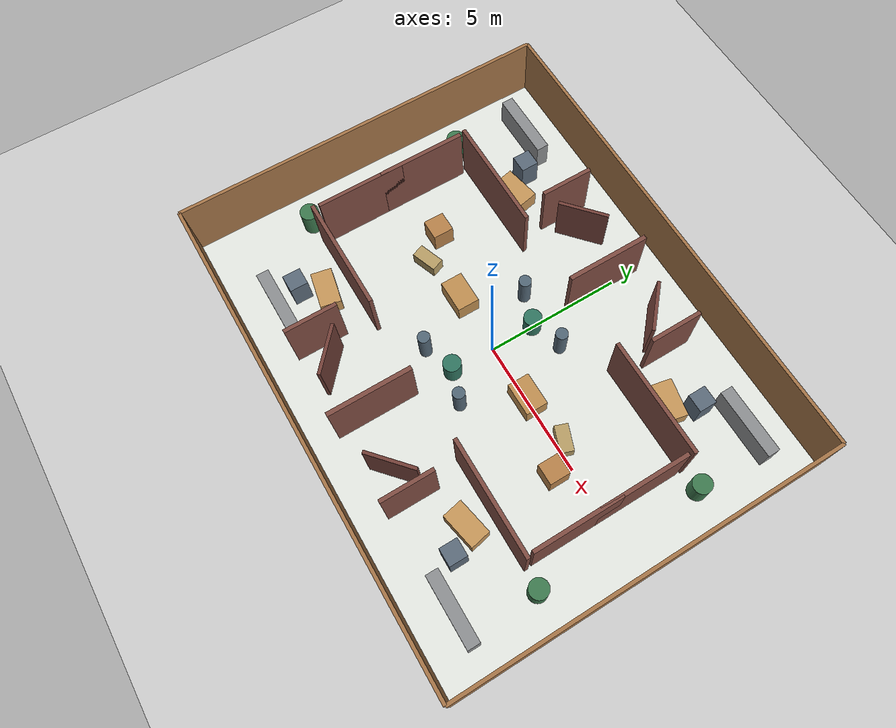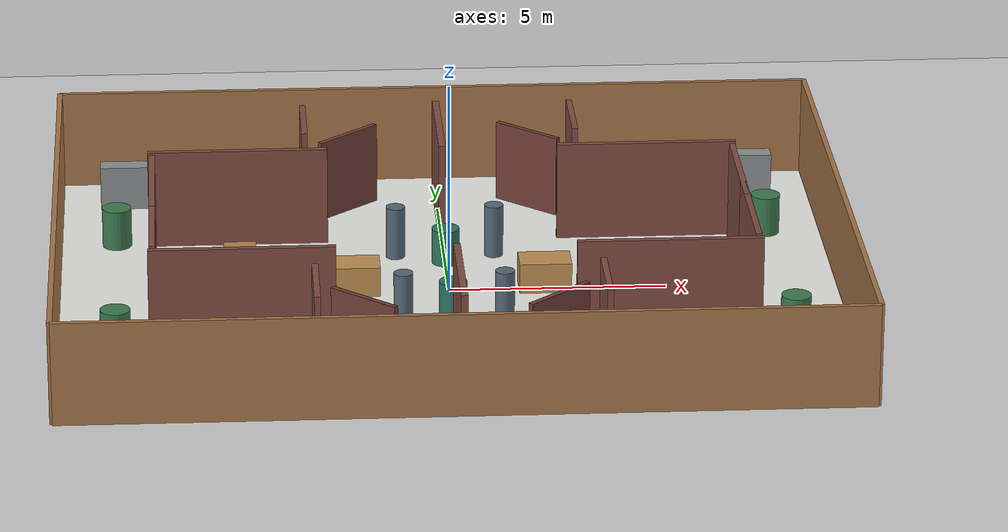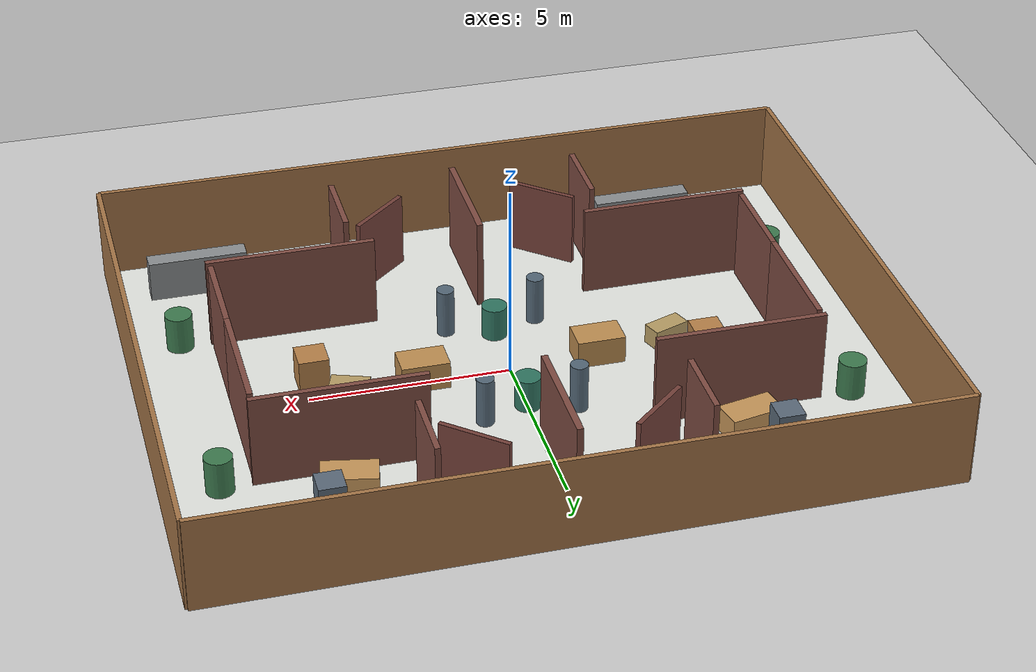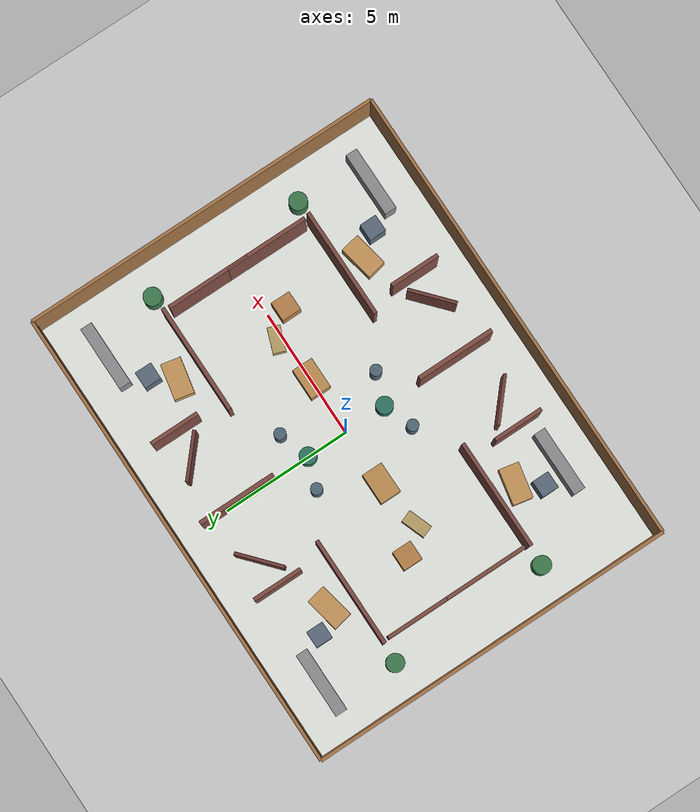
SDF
<?xml version="1.0" ?>
<sdf version="1.6">
  <world name="mapcomplex_scan_world">
    <gravity>0 0 -9.8</gravity>
    <magnetic_field>6e-06 2.3e-05 -4.2e-05</magnetic_field>
    <atmosphere type="adiabatic"/>

    <include>
      <uri>model://sun</uri>
    </include>

    <include>
      <uri>model://ground_plane</uri>
    </include>

    <scene>
      <ambient>0.76 0.76 0.74 1</ambient>
      <background>0.92 0.94 0.97 1</background>
      <shadows>true</shadows>
    </scene>

    <physics name="default_physics" default="1" type="ode">
      <max_step_size>0.001</max_step_size>
      <real_time_update_rate>1000</real_time_update_rate>
    </physics>

    <gui fullscreen="0">
      <camera name="user_camera">
        <pose>0 0 24 0 1.57 1.57</pose>
        <view_controller>orbit</view_controller>
        <projection_type>perspective</projection_type>
      </camera>
    </gui>

    <model name="complex_scan_layout">
      <static>true</static>
      <pose>0 0 0 0 0 0</pose>

      <link name="floor">
        <pose>0 0 0.025 0 0 0</pose>
        <collision name="floor_collision">
          <geometry>
            <box><size>18 14 0.05</size></box>
          </geometry>
        </collision>
        <visual name="floor_visual">
          <geometry>
            <box><size>18 14 0.05</size></box>
          </geometry>
          <material>
            <ambient>0.84 0.85 0.83 1</ambient>
            <diffuse>0.90 0.91 0.89 1</diffuse>
          </material>
        </visual>
      </link>

      <link name="wall_south">
        <pose>0 -7 1.2 0 0 0</pose>
        <collision name="collision">
          <geometry><box><size>18 0.12 2.4</size></box></geometry>
        </collision>
        <visual name="visual">
          <geometry><box><size>18 0.12 2.4</size></box></geometry>
          <material>
            <ambient>0.54 0.37 0.22 1</ambient>
            <diffuse>0.65 0.46 0.28 1</diffuse>
          </material>
        </visual>
      </link>

      <link name="wall_north">
        <pose>0 7 1.2 0 0 0</pose>
        <collision name="collision">
          <geometry><box><size>18 0.12 2.4</size></box></geometry>
        </collision>
        <visual name="visual">
          <geometry><box><size>18 0.12 2.4</size></box></geometry>
          <material>
            <ambient>0.54 0.37 0.22 1</ambient>
            <diffuse>0.65 0.46 0.28 1</diffuse>
          </material>
        </visual>
      </link>

      <link name="wall_west">
        <pose>-9 0 1.2 0 0 0</pose>
        <collision name="collision">
          <geometry><box><size>0.12 14 2.4</size></box></geometry>
        </collision>
        <visual name="visual">
          <geometry><box><size>0.12 14 2.4</size></box></geometry>
          <material>
            <ambient>0.54 0.37 0.22 1</ambient>
            <diffuse>0.65 0.46 0.28 1</diffuse>
          </material>
        </visual>
      </link>

      <link name="wall_east">
        <pose>9 0 1.2 0 0 0</pose>
        <collision name="collision">
          <geometry><box><size>0.12 14 2.4</size></box></geometry>
        </collision>
        <visual name="visual">
          <geometry><box><size>0.12 14 2.4</size></box></geometry>
          <material>
            <ambient>0.54 0.37 0.22 1</ambient>
            <diffuse>0.65 0.46 0.28 1</diffuse>
          </material>
        </visual>
      </link>

      <link name="center_spine_bottom">
        <pose>0 -4.5 1.2 0 0 0</pose>
        <collision name="collision">
          <geometry><box><size>0.16 3.0 2.4</size></box></geometry>
        </collision>
        <visual name="visual">
          <geometry><box><size>0.16 3.0 2.4</size></box></geometry>
          <material>
            <ambient>0.39 0.22 0.20 1</ambient>
            <diffuse>0.50 0.30 0.26 1</diffuse>
          </material>
        </visual>
      </link>

      <link name="center_spine_top">
        <pose>0 4.5 1.2 0 0 0</pose>
        <collision name="collision">
          <geometry><box><size>0.16 3.0 2.4</size></box></geometry>
        </collision>
        <visual name="visual">
          <geometry><box><size>0.16 3.0 2.4</size></box></geometry>
          <material>
            <ambient>0.39 0.22 0.20 1</ambient>
            <diffuse>0.50 0.30 0.26 1</diffuse>
          </material>
        </visual>
      </link>

      <link name="crossbar_south_left">
        <pose>-4.8 -3.0 1.2 0 0 0</pose>
        <collision name="collision">
          <geometry><box><size>4.2 0.14 2.4</size></box></geometry>
        </collision>
        <visual name="visual">
          <geometry><box><size>4.2 0.14 2.4</size></box></geometry>
          <material>
            <ambient>0.39 0.22 0.20 1</ambient>
            <diffuse>0.50 0.30 0.26 1</diffuse>
          </material>
        </visual>
      </link>

      <link name="crossbar_south_right">
        <pose>4.8 -3.0 1.2 0 0 0</pose>
        <collision name="collision">
          <geometry><box><size>4.2 0.14 2.4</size></box></geometry>
        </collision>
        <visual name="visual">
          <geometry><box><size>4.2 0.14 2.4</size></box></geometry>
          <material>
            <ambient>0.39 0.22 0.20 1</ambient>
            <diffuse>0.50 0.30 0.26 1</diffuse>
          </material>
        </visual>
      </link>

      <link name="crossbar_north_left">
        <pose>-4.8 3.0 1.2 0 0 0</pose>
        <collision name="collision">
          <geometry><box><size>4.2 0.14 2.4</size></box></geometry>
        </collision>
        <visual name="visual">
          <geometry><box><size>4.2 0.14 2.4</size></box></geometry>
          <material>
            <ambient>0.39 0.22 0.20 1</ambient>
            <diffuse>0.50 0.30 0.26 1</diffuse>
          </material>
        </visual>
      </link>

      <link name="crossbar_north_right">
        <pose>4.8 3.0 1.2 0 0 0</pose>
        <collision name="collision">
          <geometry><box><size>4.2 0.14 2.4</size></box></geometry>
        </collision>
        <visual name="visual">
          <geometry><box><size>4.2 0.14 2.4</size></box></geometry>
          <material>
            <ambient>0.39 0.22 0.20 1</ambient>
            <diffuse>0.50 0.30 0.26 1</diffuse>
          </material>
        </visual>
      </link>

      <link name="west_vertical_inner_south">
        <pose>-3.2 -4.95 1.2 0 0 0</pose>
        <collision name="collision">
          <geometry><box><size>0.14 1.9 2.4</size></box></geometry>
        </collision>
        <visual name="visual">
          <geometry><box><size>0.14 1.9 2.4</size></box></geometry>
          <material>
            <ambient>0.39 0.22 0.20 1</ambient>
            <diffuse>0.50 0.30 0.26 1</diffuse>
          </material>
        </visual>
      </link>

      <link name="east_vertical_inner_south">
        <pose>3.2 -4.95 1.2 0 0 0</pose>
        <collision name="collision">
          <geometry><box><size>0.14 1.9 2.4</size></box></geometry>
        </collision>
        <visual name="visual">
          <geometry><box><size>0.14 1.9 2.4</size></box></geometry>
          <material>
            <ambient>0.39 0.22 0.20 1</ambient>
            <diffuse>0.50 0.30 0.26 1</diffuse>
          </material>
        </visual>
      </link>

      <link name="west_vertical_inner_north">
        <pose>-3.2 4.95 1.2 0 0 0</pose>
        <collision name="collision">
          <geometry><box><size>0.14 1.9 2.4</size></box></geometry>
        </collision>
        <visual name="visual">
          <geometry><box><size>0.14 1.9 2.4</size></box></geometry>
          <material>
            <ambient>0.39 0.22 0.20 1</ambient>
            <diffuse>0.50 0.30 0.26 1</diffuse>
          </material>
        </visual>
      </link>

      <link name="east_vertical_inner_north">
        <pose>3.2 4.95 1.2 0 0 0</pose>
        <collision name="collision">
          <geometry><box><size>0.14 1.9 2.4</size></box></geometry>
        </collision>
        <visual name="visual">
          <geometry><box><size>0.14 1.9 2.4</size></box></geometry>
          <material>
            <ambient>0.39 0.22 0.20 1</ambient>
            <diffuse>0.50 0.30 0.26 1</diffuse>
          </material>
        </visual>
      </link>

      <link name="west_outer_partition_south">
        <pose>-6.8 -1.2 1.2 0 0 0</pose>
        <collision name="collision">
          <geometry><box><size>0.14 3.2 2.4</size></box></geometry>
        </collision>
        <visual name="visual">
          <geometry><box><size>0.14 3.2 2.4</size></box></geometry>
          <material>
            <ambient>0.39 0.22 0.20 1</ambient>
            <diffuse>0.50 0.30 0.26 1</diffuse>
          </material>
        </visual>
      </link>

      <link name="east_outer_partition_south">
        <pose>6.8 -1.2 1.2 0 0 0</pose>
        <collision name="collision">
          <geometry><box><size>0.14 3.2 2.4</size></box></geometry>
        </collision>
        <visual name="visual">
          <geometry><box><size>0.14 3.2 2.4</size></box></geometry>
          <material>
            <ambient>0.39 0.22 0.20 1</ambient>
            <diffuse>0.50 0.30 0.26 1</diffuse>
          </material>
        </visual>
      </link>

      <link name="west_outer_partition_north">
        <pose>-6.8 1.2 1.2 0 0 0</pose>
        <collision name="collision">
          <geometry><box><size>0.14 3.2 2.4</size></box></geometry>
        </collision>
        <visual name="visual">
          <geometry><box><size>0.14 3.2 2.4</size></box></geometry>
          <material>
            <ambient>0.39 0.22 0.20 1</ambient>
            <diffuse>0.50 0.30 0.26 1</diffuse>
          </material>
        </visual>
      </link>

      <link name="east_outer_partition_north">
        <pose>6.8 1.2 1.2 0 0 0</pose>
        <collision name="collision">
          <geometry><box><size>0.14 3.2 2.4</size></box></geometry>
        </collision>
        <visual name="visual">
          <geometry><box><size>0.14 3.2 2.4</size></box></geometry>
          <material>
            <ambient>0.39 0.22 0.20 1</ambient>
            <diffuse>0.50 0.30 0.26 1</diffuse>
          </material>
        </visual>
      </link>

      <link name="pillar_nw">
        <pose>-5.4 4.7 0.55 0 0 0</pose>
        <collision name="collision">
          <geometry><box><size>0.65 0.65 1.1</size></box></geometry>
        </collision>
        <visual name="visual">
          <geometry><box><size>0.65 0.65 1.1</size></box></geometry>
          <material>
            <ambient>0.28 0.33 0.38 1</ambient>
            <diffuse>0.36 0.42 0.48 1</diffuse>
          </material>
        </visual>
      </link>

      <link name="pillar_ne">
        <pose>5.4 4.7 0.55 0 0 0</pose>
        <collision name="collision">
          <geometry><box><size>0.65 0.65 1.1</size></box></geometry>
        </collision>
        <visual name="visual">
          <geometry><box><size>0.65 0.65 1.1</size></box></geometry>
          <material>
            <ambient>0.28 0.33 0.38 1</ambient>
            <diffuse>0.36 0.42 0.48 1</diffuse>
          </material>
        </visual>
      </link>

      <link name="pillar_sw">
        <pose>-5.4 -4.7 0.55 0 0 0</pose>
        <collision name="collision">
          <geometry><box><size>0.65 0.65 1.1</size></box></geometry>
        </collision>
        <visual name="visual">
          <geometry><box><size>0.65 0.65 1.1</size></box></geometry>
          <material>
            <ambient>0.28 0.33 0.38 1</ambient>
            <diffuse>0.36 0.42 0.48 1</diffuse>
          </material>
        </visual>
      </link>

      <link name="pillar_se">
        <pose>5.4 -4.7 0.55 0 0 0</pose>
        <collision name="collision">
          <geometry><box><size>0.65 0.65 1.1</size></box></geometry>
        </collision>
        <visual name="visual">
          <geometry><box><size>0.65 0.65 1.1</size></box></geometry>
          <material>
            <ambient>0.28 0.33 0.38 1</ambient>
            <diffuse>0.36 0.42 0.48 1</diffuse>
          </material>
        </visual>
      </link>

      <link name="low_box_west_mid">
        <pose>-2.2 0 0.38 0 0 0</pose>
        <collision name="collision">
          <geometry><box><size>1.2 0.8 0.76</size></box></geometry>
        </collision>
        <visual name="visual">
          <geometry><box><size>1.2 0.8 0.76</size></box></geometry>
          <material>
            <ambient>0.63 0.47 0.27 1</ambient>
            <diffuse>0.75 0.56 0.32 1</diffuse>
          </material>
        </visual>
      </link>

      <link name="low_box_east_mid">
        <pose>2.2 0 0.38 0 0 0</pose>
        <collision name="collision">
          <geometry><box><size>1.2 0.8 0.76</size></box></geometry>
        </collision>
        <visual name="visual">
          <geometry><box><size>1.2 0.8 0.76</size></box></geometry>
          <material>
            <ambient>0.63 0.47 0.27 1</ambient>
            <diffuse>0.75 0.56 0.32 1</diffuse>
          </material>
        </visual>
      </link>

      <link name="cylinder_south_center">
        <pose>0 -1.6 0.45 0 0 0</pose>
        <collision name="collision">
          <geometry><cylinder><radius>0.32</radius><length>0.9</length></cylinder></geometry>
        </collision>
        <visual name="visual">
          <geometry><cylinder><radius>0.32</radius><length>0.9</length></cylinder></geometry>
          <material>
            <ambient>0.15 0.34 0.28 1</ambient>
            <diffuse>0.19 0.46 0.38 1</diffuse>
          </material>
        </visual>
      </link>

      <link name="cylinder_north_center">
        <pose>0 1.6 0.45 0 0 0</pose>
        <collision name="collision">
          <geometry><cylinder><radius>0.32</radius><length>0.9</length></cylinder></geometry>
        </collision>
        <visual name="visual">
          <geometry><cylinder><radius>0.32</radius><length>0.9</length></cylinder></geometry>
          <material>
            <ambient>0.15 0.34 0.28 1</ambient>
            <diffuse>0.19 0.46 0.38 1</diffuse>
          </material>
        </visual>
      </link>

      <link name="nw_shelf_long">
        <pose>-6.8 5.55 0.55 0 0 0</pose>
        <collision name="collision">
          <geometry><box><size>2.5 0.45 1.1</size></box></geometry>
        </collision>
        <visual name="visual">
          <geometry><box><size>2.5 0.45 1.1</size></box></geometry>
          <material>
            <ambient>0.42 0.43 0.43 1</ambient>
            <diffuse>0.55 0.56 0.57 1</diffuse>
          </material>
        </visual>
      </link>

      <link name="ne_shelf_long">
        <pose>6.8 5.55 0.55 0 0 0</pose>
        <collision name="collision">
          <geometry><box><size>2.5 0.45 1.1</size></box></geometry>
        </collision>
        <visual name="visual">
          <geometry><box><size>2.5 0.45 1.1</size></box></geometry>
          <material>
            <ambient>0.42 0.43 0.43 1</ambient>
            <diffuse>0.55 0.56 0.57 1</diffuse>
          </material>
        </visual>
      </link>

      <link name="sw_shelf_long">
        <pose>-5.0 -5.55 0.55 0 0 0</pose>
        <collision name="collision">
          <geometry><box><size>2.5 0.45 1.1</size></box></geometry>
        </collision>
        <visual name="visual">
          <geometry><box><size>2.5 0.45 1.1</size></box></geometry>
          <material>
            <ambient>0.42 0.43 0.43 1</ambient>
            <diffuse>0.55 0.56 0.57 1</diffuse>
          </material>
        </visual>
      </link>

      <link name="se_shelf_long">
        <pose>6.8 -5.55 0.55 0 0 0</pose>
        <collision name="collision">
          <geometry><box><size>2.5 0.45 1.1</size></box></geometry>
        </collision>
        <visual name="visual">
          <geometry><box><size>2.5 0.45 1.1</size></box></geometry>
          <material>
            <ambient>0.42 0.43 0.43 1</ambient>
            <diffuse>0.55 0.56 0.57 1</diffuse>
          </material>
        </visual>
      </link>

      <link name="nw_diagonal_screen">
        <pose>-2.15 5.0 1.0 0 0 0.72</pose>
        <collision name="collision">
          <geometry><box><size>1.8 0.12 2.0</size></box></geometry>
        </collision>
        <visual name="visual">
          <geometry><box><size>1.8 0.12 2.0</size></box></geometry>
          <material>
            <ambient>0.34 0.18 0.17 1</ambient>
            <diffuse>0.45 0.25 0.22 1</diffuse>
          </material>
        </visual>
      </link>

      <link name="ne_diagonal_screen">
        <pose>2.15 5.0 1.0 0 0 -0.72</pose>
        <collision name="collision">
          <geometry><box><size>1.8 0.12 2.0</size></box></geometry>
        </collision>
        <visual name="visual">
          <geometry><box><size>1.8 0.12 2.0</size></box></geometry>
          <material>
            <ambient>0.34 0.18 0.17 1</ambient>
            <diffuse>0.45 0.25 0.22 1</diffuse>
          </material>
        </visual>
      </link>

      <link name="sw_diagonal_screen">
        <pose>-2.15 -5.0 1.0 0 0 -0.72</pose>
        <collision name="collision">
          <geometry><box><size>1.8 0.12 2.0</size></box></geometry>
        </collision>
        <visual name="visual">
          <geometry><box><size>1.8 0.12 2.0</size></box></geometry>
          <material>
            <ambient>0.34 0.18 0.17 1</ambient>
            <diffuse>0.45 0.25 0.22 1</diffuse>
          </material>
        </visual>
      </link>

      <link name="se_diagonal_screen">
        <pose>2.15 -5.0 1.0 0 0 0.72</pose>
        <collision name="collision">
          <geometry><box><size>1.8 0.12 2.0</size></box></geometry>
        </collision>
        <visual name="visual">
          <geometry><box><size>1.8 0.12 2.0</size></box></geometry>
          <material>
            <ambient>0.34 0.18 0.17 1</ambient>
            <diffuse>0.45 0.25 0.22 1</diffuse>
          </material>
        </visual>
      </link>

      <link name="west_mid_crate_stack">
        <pose>-4.8 0.65 0.45 0 0 0</pose>
        <collision name="collision">
          <geometry><box><size>0.75 0.75 0.9</size></box></geometry>
        </collision>
        <visual name="visual">
          <geometry><box><size>0.75 0.75 0.9</size></box></geometry>
          <material>
            <ambient>0.59 0.41 0.23 1</ambient>
            <diffuse>0.72 0.51 0.29 1</diffuse>
          </material>
        </visual>
      </link>

      <link name="east_mid_crate_stack">
        <pose>4.8 -0.65 0.45 0 0 0</pose>
        <collision name="collision">
          <geometry><box><size>0.75 0.75 0.9</size></box></geometry>
        </collision>
        <visual name="visual">
          <geometry><box><size>0.75 0.75 0.9</size></box></geometry>
          <material>
            <ambient>0.59 0.41 0.23 1</ambient>
            <diffuse>0.72 0.51 0.29 1</diffuse>
          </material>
        </visual>
      </link>

      <link name="west_mid_crate_low">
        <pose>-4.05 -0.25 0.28 0 0 0.35</pose>
        <collision name="collision">
          <geometry><box><size>0.95 0.48 0.56</size></box></geometry>
        </collision>
        <visual name="visual">
          <geometry><box><size>0.95 0.48 0.56</size></box></geometry>
          <material>
            <ambient>0.58 0.50 0.32 1</ambient>
            <diffuse>0.72 0.62 0.40 1</diffuse>
          </material>
        </visual>
      </link>

      <link name="east_mid_crate_low">
        <pose>4.05 0.25 0.28 0 0 -0.35</pose>
        <collision name="collision">
          <geometry><box><size>0.95 0.48 0.56</size></box></geometry>
        </collision>
        <visual name="visual">
          <geometry><box><size>0.95 0.48 0.56</size></box></geometry>
          <material>
            <ambient>0.58 0.50 0.32 1</ambient>
            <diffuse>0.72 0.62 0.40 1</diffuse>
          </material>
        </visual>
      </link>

      <link name="north_center_small_pillar_left">
        <pose>-1.15 2.0 0.65 0 0 0</pose>
        <collision name="collision">
          <geometry><cylinder><radius>0.22</radius><length>1.3</length></cylinder></geometry>
        </collision>
        <visual name="visual">
          <geometry><cylinder><radius>0.22</radius><length>1.3</length></cylinder></geometry>
          <material>
            <ambient>0.25 0.31 0.36 1</ambient>
            <diffuse>0.33 0.41 0.47 1</diffuse>
          </material>
        </visual>
      </link>

      <link name="north_center_small_pillar_right">
        <pose>1.15 2.0 0.65 0 0 0</pose>
        <collision name="collision">
          <geometry><cylinder><radius>0.22</radius><length>1.3</length></cylinder></geometry>
        </collision>
        <visual name="visual">
          <geometry><cylinder><radius>0.22</radius><length>1.3</length></cylinder></geometry>
          <material>
            <ambient>0.25 0.31 0.36 1</ambient>
            <diffuse>0.33 0.41 0.47 1</diffuse>
          </material>
        </visual>
      </link>

      <link name="south_center_small_pillar_left">
        <pose>-1.15 -2.0 0.65 0 0 0</pose>
        <collision name="collision">
          <geometry><cylinder><radius>0.22</radius><length>1.3</length></cylinder></geometry>
        </collision>
        <visual name="visual">
          <geometry><cylinder><radius>0.22</radius><length>1.3</length></cylinder></geometry>
          <material>
            <ambient>0.25 0.31 0.36 1</ambient>
            <diffuse>0.33 0.41 0.47 1</diffuse>
          </material>
        </visual>
      </link>

      <link name="south_center_small_pillar_right">
        <pose>1.15 -2.0 0.65 0 0 0</pose>
        <collision name="collision">
          <geometry><cylinder><radius>0.22</radius><length>1.3</length></cylinder></geometry>
        </collision>
        <visual name="visual">
          <geometry><cylinder><radius>0.22</radius><length>1.3</length></cylinder></geometry>
          <material>
            <ambient>0.25 0.31 0.36 1</ambient>
            <diffuse>0.33 0.41 0.47 1</diffuse>
          </material>
        </visual>
      </link>

      <link name="north_left_table">
        <pose>-4.8 3.9 0.35 0 0 0.2</pose>
        <collision name="collision">
          <geometry><box><size>1.35 0.75 0.7</size></box></geometry>
        </collision>
        <visual name="visual">
          <geometry><box><size>1.35 0.75 0.7</size></box></geometry>
          <material>
            <ambient>0.63 0.48 0.29 1</ambient>
            <diffuse>0.78 0.59 0.35 1</diffuse>
          </material>
        </visual>
      </link>

      <link name="north_right_table">
        <pose>4.8 3.9 0.35 0 0 -0.2</pose>
        <collision name="collision">
          <geometry><box><size>1.35 0.75 0.7</size></box></geometry>
        </collision>
        <visual name="visual">
          <geometry><box><size>1.35 0.75 0.7</size></box></geometry>
          <material>
            <ambient>0.63 0.48 0.29 1</ambient>
            <diffuse>0.78 0.59 0.35 1</diffuse>
          </material>
        </visual>
      </link>

      <link name="south_left_table">
        <pose>-4.8 -3.9 0.35 0 0 -0.2</pose>
        <collision name="collision">
          <geometry><box><size>1.35 0.75 0.7</size></box></geometry>
        </collision>
        <visual name="visual">
          <geometry><box><size>1.35 0.75 0.7</size></box></geometry>
          <material>
            <ambient>0.63 0.48 0.29 1</ambient>
            <diffuse>0.78 0.59 0.35 1</diffuse>
          </material>
        </visual>
      </link>

      <link name="south_right_table">
        <pose>4.8 -3.9 0.35 0 0 0.2</pose>
        <collision name="collision">
          <geometry><box><size>1.35 0.75 0.7</size></box></geometry>
        </collision>
        <visual name="visual">
          <geometry><box><size>1.35 0.75 0.7</size></box></geometry>
          <material>
            <ambient>0.63 0.48 0.29 1</ambient>
            <diffuse>0.78 0.59 0.35 1</diffuse>
          </material>
        </visual>
      </link>

      <link name="west_outer_round_obstacle_top">
        <pose>-7.65 3.05 0.5 0 0 0</pose>
        <collision name="collision">
          <geometry><cylinder><radius>0.34</radius><length>1.0</length></cylinder></geometry>
        </collision>
        <visual name="visual">
          <geometry><cylinder><radius>0.34</radius><length>1.0</length></cylinder></geometry>
          <material>
            <ambient>0.18 0.34 0.22 1</ambient>
            <diffuse>0.24 0.48 0.31 1</diffuse>
          </material>
        </visual>
      </link>

      <link name="east_outer_round_obstacle_top">
        <pose>7.65 3.05 0.5 0 0 0</pose>
        <collision name="collision">
          <geometry><cylinder><radius>0.34</radius><length>1.0</length></cylinder></geometry>
        </collision>
        <visual name="visual">
          <geometry><cylinder><radius>0.34</radius><length>1.0</length></cylinder></geometry>
          <material>
            <ambient>0.18 0.34 0.22 1</ambient>
            <diffuse>0.24 0.48 0.31 1</diffuse>
          </material>
        </visual>
      </link>

      <link name="west_outer_round_obstacle_bottom">
        <pose>-7.65 -3.05 0.5 0 0 0</pose>
        <collision name="collision">
          <geometry><cylinder><radius>0.34</radius><length>1.0</length></cylinder></geometry>
        </collision>
        <visual name="visual">
          <geometry><cylinder><radius>0.34</radius><length>1.0</length></cylinder></geometry>
          <material>
            <ambient>0.18 0.34 0.22 1</ambient>
            <diffuse>0.24 0.48 0.31 1</diffuse>
          </material>
        </visual>
      </link>

      <link name="east_outer_round_obstacle_bottom">
        <pose>7.65 -3.05 0.5 0 0 0</pose>
        <collision name="collision">
          <geometry><cylinder><radius>0.34</radius><length>1.0</length></cylinder></geometry>
        </collision>
        <visual name="visual">
          <geometry><cylinder><radius>0.34</radius><length>1.0</length></cylinder></geometry>
          <material>
            <ambient>0.18 0.34 0.22 1</ambient>
            <diffuse>0.24 0.48 0.31 1</diffuse>
          </material>
        </visual>
      </link>
    </model>
  </world>
</sdf>
